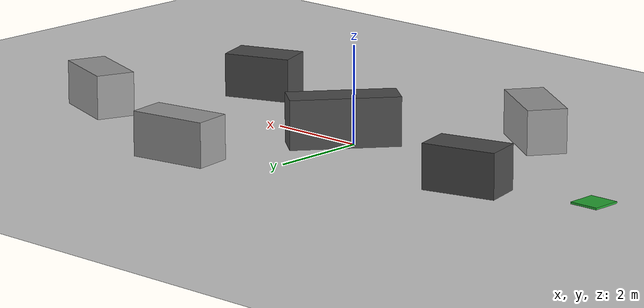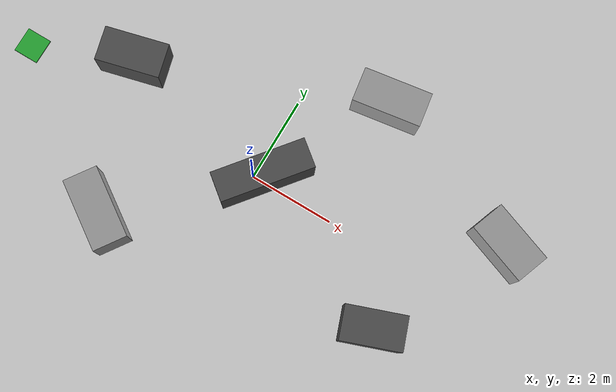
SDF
<?xml version="1.0"?>
<sdf version="1.6">
  <world name="thermal_nav_sparse_islands">
    <physics type="ode">
      <real_time_update_rate>1000</real_time_update_rate>
      <max_step_size>0.001</max_step_size>
      <real_time_factor>1</real_time_factor>
    </physics>

    <include><uri>model://sun</uri></include>
    <include><uri>model://ground_plane</uri></include>

    <scene>
      <ambient>0.48 0.48 0.48 1</ambient>
      <background>0.18 0.21 0.22 1</background>
      <shadows>false</shadows>
    </scene>

    <gui fullscreen="0">
      <camera name="user_camera">
        <pose>0 0 24 0 1.5707 0</pose>
        <view_controller>orbit</view_controller>
      </camera>
    </gui>

    <model name="robot_start_marker">
      <static>true</static>
      <pose>-6.0 0 0 0 0 0</pose>
      <link name="link">
        <visual name="pad">
          <pose>0 0 0.02 0 0 0</pose>
          <geometry><box><size>0.6 0.6 0.04</size></box></geometry>
          <material><script><uri>file://media/materials/scripts/gazebo.material</uri><name>Gazebo/Green</name></script></material>
        </visual>
      </link>
    </model>

    <model name="island_west_gate">
      <static>true</static>
      <pose>-3.7 0.9 0.45 0 0 0.25</pose>
      <link name="link">
        <collision name="collision"><geometry><box><size>1.5 0.8 0.9</size></box></geometry></collision>
        <visual name="visual"><geometry><box><size>1.5 0.8 0.9</size></box></geometry><material><script><uri>file://media/materials/scripts/gazebo.material</uri><name>Gazebo/DarkGrey</name></script></material></visual>
      </link>
    </model>

    <model name="island_south_gate">
      <static>true</static>
      <pose>-2.5 -2.5 0.45 0 0 -0.6</pose>
      <link name="link">
        <collision name="collision"><geometry><box><size>1.7 0.8 0.9</size></box></geometry></collision>
        <visual name="visual"><geometry><box><size>1.7 0.8 0.9</size></box></geometry><material><script><uri>file://media/materials/scripts/gazebo.material</uri><name>Gazebo/Grey</name></script></material></visual>
      </link>
    </model>

    <model name="island_center_slant">
      <static>true</static>
      <pose>0.2 0.1 0.5 0 0 0.9</pose>
      <link name="link">
        <collision name="collision"><geometry><box><size>2.2 0.7 1.0</size></box></geometry></collision>
        <visual name="visual"><geometry><box><size>2.2 0.7 1.0</size></box></geometry><material><script><uri>file://media/materials/scripts/gazebo.material</uri><name>Gazebo/DarkGrey</name></script></material></visual>
      </link>
    </model>

    <model name="island_north_mid">
      <static>true</static>
      <pose>1.8 3.0 0.45 0 0 0.15</pose>
      <link name="link">
        <collision name="collision"><geometry><box><size>1.6 0.8 0.9</size></box></geometry></collision>
        <visual name="visual"><geometry><box><size>1.6 0.8 0.9</size></box></geometry><material><script><uri>file://media/materials/scripts/gazebo.material</uri><name>Gazebo/Grey</name></script></material></visual>
      </link>
    </model>

    <model name="island_east_pair_a">
      <static>true</static>
      <pose>4.0 -1.6 0.45 0 0 0.35</pose>
      <link name="link">
        <collision name="collision"><geometry><box><size>1.4 0.8 0.9</size></box></geometry></collision>
        <visual name="visual"><geometry><box><size>1.4 0.8 0.9</size></box></geometry><material><script><uri>file://media/materials/scripts/gazebo.material</uri><name>Gazebo/DarkGrey</name></script></material></visual>
      </link>
    </model>

    <model name="island_east_pair_b">
      <static>true</static>
      <pose>5.6 1.5 0.45 0 0 -0.35</pose>
      <link name="link">
        <collision name="collision"><geometry><box><size>1.5 0.8 0.9</size></box></geometry></collision>
        <visual name="visual"><geometry><box><size>1.5 0.8 0.9</size></box></geometry><material><script><uri>file://media/materials/scripts/gazebo.material</uri><name>Gazebo/Grey</name></script></material></visual>
      </link>
    </model>
  </world>
</sdf>
